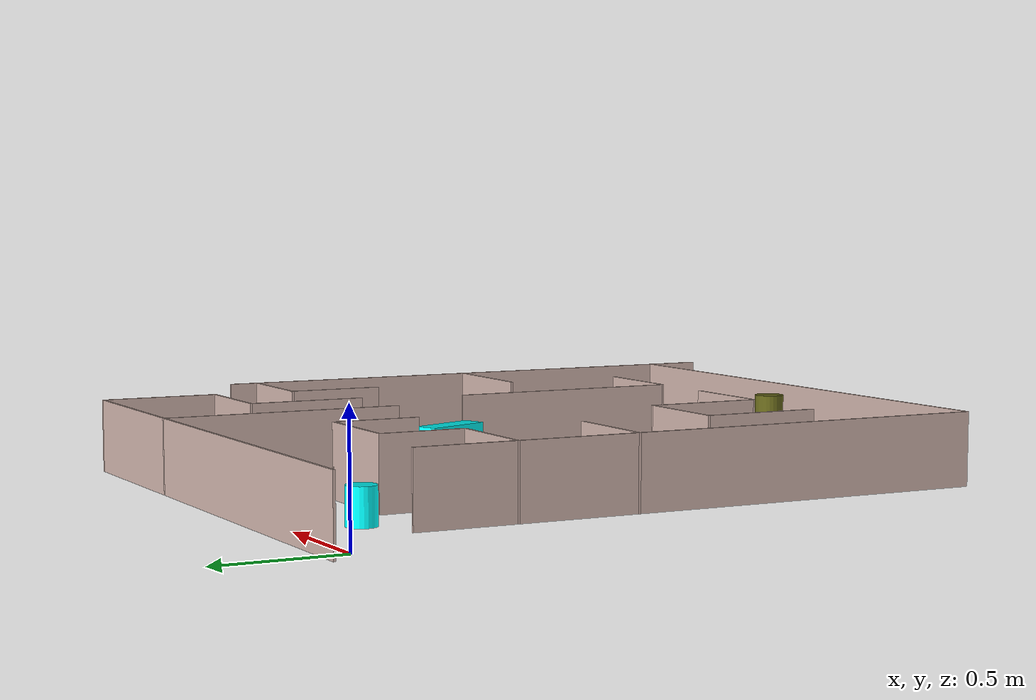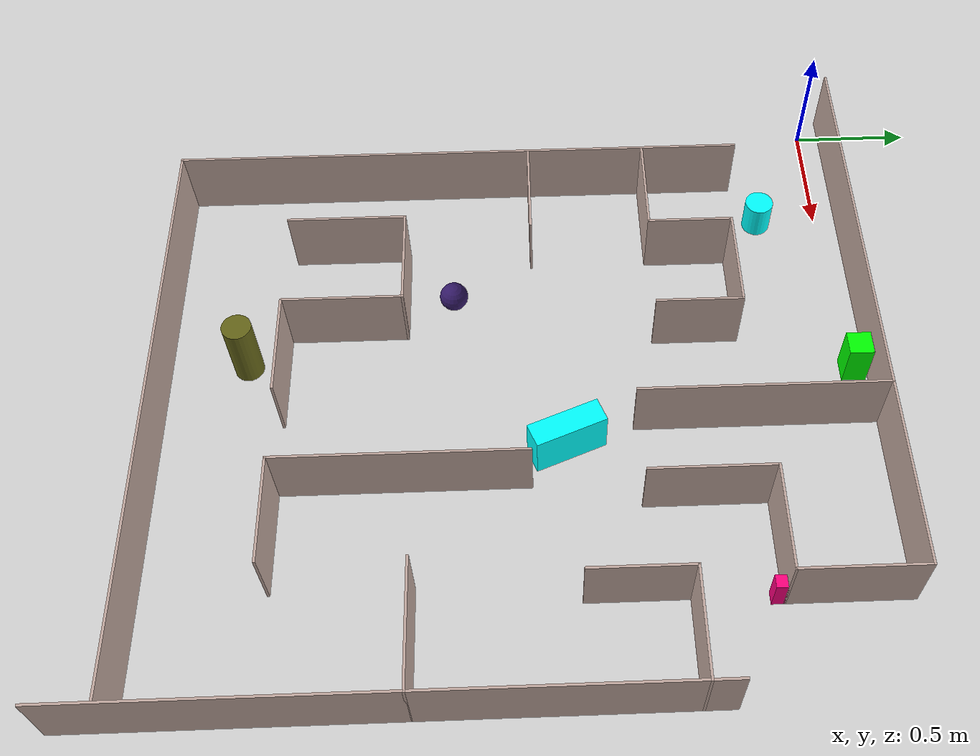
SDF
<?xml version='1.0'?>
<sdf version='1.7'>
  <model name='world3'>
    <pose>1.31 -1.465 0 0 -0 0</pose>
    <link name='Wall_0'>
      <collision name='Wall_0_Collision'>
        <geometry>
          <box>
            <size>2.44 0.01 0.3</size>
          </box>
        </geometry>
        <pose>0 0 0.15 0 -0 0</pose>
      </collision>
      <visual name='Wall_0_Visual'>
        <pose>0 0 0.15 0 -0 0</pose>
        <geometry>
          <box>
            <size>2.44 0.01 0.3</size>
          </box>
        </geometry>
        <material>
          <script>
            <uri>file://media/materials/scripts/gazebo.material</uri>
            <name>Gazebo/Grey</name>
          </script>
          <ambient>0.760784 0.662745 0.627451 1</ambient>
        </material>
        <meta>
          <layer>0</layer>
        </meta>
      </visual>
      <pose>-0.195 1.565 0 0 -0 0</pose>
    </link>
    <link name='Wall_12'>
      <collision name='Wall_12_Collision'>
        <geometry>
          <box>
            <size>1 0.01 0.3</size>
          </box>
        </geometry>
        <pose>0 0 0.15 0 -0 0</pose>
      </collision>
      <visual name='Wall_12_Visual'>
        <pose>0 0 0.15 0 -0 0</pose>
        <geometry>
          <box>
            <size>1 0.01 0.3</size>
          </box>
        </geometry>
        <material>
          <script>
            <uri>file://media/materials/scripts/gazebo.material</uri>
            <name>Gazebo/Grey</name>
          </script>
          <ambient>0.760784 0.662745 0.627451 1</ambient>
        </material>
        <meta>
          <layer>0</layer>
        </meta>
      </visual>
      <pose>0.25 1.07 0 0 -0 -1.5708</pose>
    </link>
    <link name='Wall_15'>
      <collision name='Wall_15_Collision'>
        <geometry>
          <box>
            <size>2.43 0.01 0.3</size>
          </box>
        </geometry>
        <pose>0 0 0.15 0 -0 0</pose>
      </collision>
      <visual name='Wall_15_Visual'>
        <pose>0 0 0.15 0 -0 0</pose>
        <geometry>
          <box>
            <size>2.43 0.01 0.3</size>
          </box>
        </geometry>
        <material>
          <script>
            <uri>file://media/materials/scripts/gazebo.material</uri>
            <name>Gazebo/Grey</name>
          </script>
          <ambient>0.760784 0.662745 0.627451 1</ambient>
        </material>
        <meta>
          <layer>0</layer>
        </meta>
      </visual>
      <pose>-1.01 -0.115 0 0 -0 -1.5708</pose>
    </link>
    <link name='Wall_17'>
      <collision name='Wall_17_Collision'>
        <geometry>
          <box>
            <size>2.43 0.01 0.3</size>
          </box>
        </geometry>
        <pose>0 0 0.15 0 -0 0</pose>
      </collision>
      <visual name='Wall_17_Visual'>
        <pose>0 0 0.15 0 -0 0</pose>
        <geometry>
          <box>
            <size>2.43 0.01 0.3</size>
          </box>
        </geometry>
        <material>
          <script>
            <uri>file://media/materials/scripts/gazebo.material</uri>
            <name>Gazebo/Grey</name>
          </script>
          <ambient>0.760784 0.662745 0.627451 1</ambient>
        </material>
        <meta>
          <layer>0</layer>
        </meta>
      </visual>
      <pose>0.2 -1.325 0 0 -0 0</pose>
    </link>
    <link name='Wall_19'>
      <collision name='Wall_19_Collision'>
        <geometry>
          <box>
            <size>2.43 0.01 0.3</size>
          </box>
        </geometry>
        <pose>0 0 0.15 0 -0 0</pose>
      </collision>
      <visual name='Wall_19_Visual'>
        <pose>0 0 0.15 0 -0 0</pose>
        <geometry>
          <box>
            <size>2.43 0.01 0.3</size>
          </box>
        </geometry>
        <material>
          <script>
            <uri>file://media/materials/scripts/gazebo.material</uri>
            <name>Gazebo/Grey</name>
          </script>
          <ambient>0.760784 0.662745 0.627451 1</ambient>
        </material>
        <meta>
          <layer>0</layer>
        </meta>
      </visual>
      <pose>1.41 -0.355 0 0 -0 1.5708</pose>
    </link>
    <link name='Wall_2'>
      <collision name='Wall_2_Collision'>
        <geometry>
          <box>
            <size>0.5 0.01 0.3</size>
          </box>
        </geometry>
        <pose>0 0 0.15 0 -0 0</pose>
      </collision>
      <visual name='Wall_2_Visual'>
        <pose>0 0 0.15 0 -0 0</pose>
        <geometry>
          <box>
            <size>0.5 0.01 0.3</size>
          </box>
        </geometry>
        <material>
          <script>
            <uri>file://media/materials/scripts/gazebo.material</uri>
            <name>Gazebo/Grey</name>
          </script>
          <ambient>0.760784 0.662745 0.627451 1</ambient>
        </material>
        <meta>
          <layer>0</layer>
        </meta>
      </visual>
      <pose>1.02 1.32 0 0 -0 -1.5708</pose>
    </link>
    <link name='Wall_22'>
      <collision name='Wall_22_Collision'>
        <geometry>
          <box>
            <size>0.43 0.01 0.3</size>
          </box>
        </geometry>
        <pose>0 0 0.15 0 -0 0</pose>
      </collision>
      <visual name='Wall_22_Visual'>
        <pose>0 0 0.15 0 -0 0</pose>
        <geometry>
          <box>
            <size>0.43 0.01 0.3</size>
          </box>
        </geometry>
        <material>
          <script>
            <uri>file://media/materials/scripts/gazebo.material</uri>
            <name>Gazebo/Grey</name>
          </script>
          <ambient>0.760784 0.662745 0.627451 1</ambient>
        </material>
        <meta>
          <layer>0</layer>
        </meta>
      </visual>
      <pose>-0.8 0.685 0 0 -0 0</pose>
    </link>
    <link name='Wall_24'>
      <collision name='Wall_24_Collision'>
        <geometry>
          <box>
            <size>0.36 0.01 0.3</size>
          </box>
        </geometry>
        <pose>0 0 0.15 0 -0 0</pose>
      </collision>
      <visual name='Wall_24_Visual'>
        <pose>0 0 0.15 0 -0 0</pose>
        <geometry>
          <box>
            <size>0.36 0.01 0.3</size>
          </box>
        </geometry>
        <material>
          <script>
            <uri>file://media/materials/scripts/gazebo.material</uri>
            <name>Gazebo/Grey</name>
          </script>
          <ambient>0.760784 0.662745 0.627451 1</ambient>
        </material>
        <meta>
          <layer>0</layer>
        </meta>
      </visual>
      <pose>-0.59 0.86 0 0 -0 1.5708</pose>
    </link>
    <link name='Wall_26'>
      <collision name='Wall_26_Collision'>
        <geometry>
          <box>
            <size>0.43 0.01 0.3</size>
          </box>
        </geometry>
        <pose>0 0 0.15 0 -0 0</pose>
      </collision>
      <visual name='Wall_26_Visual'>
        <pose>0 0 0.15 0 -0 0</pose>
        <geometry>
          <box>
            <size>0.43 0.01 0.3</size>
          </box>
        </geometry>
        <material>
          <script>
            <uri>file://media/materials/scripts/gazebo.material</uri>
            <name>Gazebo/Grey</name>
          </script>
          <ambient>0.760784 0.662745 0.627451 1</ambient>
        </material>
        <meta>
          <layer>0</layer>
        </meta>
      </visual>
      <pose>-0.38 1.035 0 0 -0 0</pose>
    </link>
    <link name='Wall_28'>
      <collision name='Wall_28_Collision'>
        <geometry>
          <box>
            <size>0.36 0.01 0.3</size>
          </box>
        </geometry>
        <pose>0 0 0.15 0 -0 0</pose>
      </collision>
      <visual name='Wall_28_Visual'>
        <pose>0 0 0.15 0 -0 0</pose>
        <geometry>
          <box>
            <size>0.36 0.01 0.3</size>
          </box>
        </geometry>
        <material>
          <script>
            <uri>file://media/materials/scripts/gazebo.material</uri>
            <name>Gazebo/Grey</name>
          </script>
          <ambient>0.760784 0.662745 0.627451 1</ambient>
        </material>
        <meta>
          <layer>0</layer>
        </meta>
      </visual>
      <pose>-0.17 0.86 0 0 -0 -1.5708</pose>
    </link>
    <link name='Wall_30'>
      <collision name='Wall_30_Collision'>
        <geometry>
          <box>
            <size>0.43 0.01 0.3</size>
          </box>
        </geometry>
        <pose>0 0 0.15 0 -0 0</pose>
      </collision>
      <visual name='Wall_30_Visual'>
        <pose>0 0 0.15 0 -0 0</pose>
        <geometry>
          <box>
            <size>0.43 0.01 0.3</size>
          </box>
        </geometry>
        <material>
          <script>
            <uri>file://media/materials/scripts/gazebo.material</uri>
            <name>Gazebo/Grey</name>
          </script>
          <ambient>0.760784 0.662745 0.627451 1</ambient>
        </material>
        <meta>
          <layer>0</layer>
        </meta>
      </visual>
      <pose>-0.8 0.185 0 0 -0 0</pose>
    </link>
    <link name='Wall_32'>
      <collision name='Wall_32_Collision'>
        <geometry>
          <box>
            <size>0.5 0.01 0.3</size>
          </box>
        </geometry>
        <pose>0 0 0.15 0 -0 0</pose>
      </collision>
      <visual name='Wall_32_Visual'>
        <pose>0 0 0.15 0 -0 0</pose>
        <geometry>
          <box>
            <size>0.5 0.01 0.3</size>
          </box>
        </geometry>
        <material>
          <script>
            <uri>file://media/materials/scripts/gazebo.material</uri>
            <name>Gazebo/Grey</name>
          </script>
          <ambient>0.760784 0.662745 0.627451 1</ambient>
        </material>
        <meta>
          <layer>0</layer>
        </meta>
      </visual>
      <pose>1.165 -0.295 0 0 -0 3.14159</pose>
    </link>
    <link name='Wall_34'>
      <collision name='Wall_34_Collision'>
        <geometry>
          <box>
            <size>0.43 0.01 0.3</size>
          </box>
        </geometry>
        <pose>0 0 0.15 0 -0 0</pose>
      </collision>
      <visual name='Wall_34_Visual'>
        <pose>0 0 0.15 0 -0 0</pose>
        <geometry>
          <box>
            <size>0.43 0.01 0.3</size>
          </box>
        </geometry>
        <material>
          <script>
            <uri>file://media/materials/scripts/gazebo.material</uri>
            <name>Gazebo/Grey</name>
          </script>
          <ambient>0.760784 0.662745 0.627451 1</ambient>
        </material>
        <meta>
          <layer>0</layer>
        </meta>
      </visual>
      <pose>1.2 0.735 0 0 -0 3.14159</pose>
    </link>
    <link name='Wall_36'>
      <collision name='Wall_36_Collision'>
        <geometry>
          <box>
            <size>0.41 0.01 0.3</size>
          </box>
        </geometry>
        <pose>0 0 0.15 0 -0 0</pose>
      </collision>
      <visual name='Wall_36_Visual'>
        <pose>0 0 0.15 0 -0 0</pose>
        <geometry>
          <box>
            <size>0.41 0.01 0.3</size>
          </box>
        </geometry>
        <material>
          <script>
            <uri>file://media/materials/scripts/gazebo.material</uri>
            <name>Gazebo/Grey</name>
          </script>
          <ambient>0.760784 0.662745 0.627451 1</ambient>
        </material>
        <meta>
          <layer>0</layer>
        </meta>
      </visual>
      <pose>0.99 0.535 0 0 -0 -1.5708</pose>
    </link>
    <link name='Wall_38'>
      <collision name='Wall_38_Collision'>
        <geometry>
          <box>
            <size>0.43 0.01 0.3</size>
          </box>
        </geometry>
        <pose>0 0 0.15 0 -0 0</pose>
      </collision>
      <visual name='Wall_38_Visual'>
        <pose>0 0 0.15 0 -0 0</pose>
        <geometry>
          <box>
            <size>0.43 0.01 0.3</size>
          </box>
        </geometry>
        <material>
          <script>
            <uri>file://media/materials/scripts/gazebo.material</uri>
            <name>Gazebo/Grey</name>
          </script>
          <ambient>0.760784 0.662745 0.627451 1</ambient>
        </material>
        <meta>
          <layer>0</layer>
        </meta>
      </visual>
      <pose>0.71 -0.835 0 0 -0 3.14159</pose>
    </link>
    <link name='Wall_39'>
      <collision name='Wall_39_Collision'>
        <geometry>
          <box>
            <size>1 0.01 0.3</size>
          </box>
        </geometry>
        <pose>0 0 0.15 0 -0 0</pose>
      </collision>
      <visual name='Wall_39_Visual'>
        <pose>0 0 0.15 0 -0 0</pose>
        <geometry>
          <box>
            <size>1 0.01 0.3</size>
          </box>
        </geometry>
        <material>
          <script>
            <uri>file://media/materials/scripts/gazebo.material</uri>
            <name>Gazebo/Grey</name>
          </script>
          <ambient>0.760784 0.662745 0.627451 1</ambient>
        </material>
        <meta>
          <layer>0</layer>
        </meta>
      </visual>
      <pose>0.5 -0.34 0 0 -0 1.5708</pose>
    </link>
    <link name='Wall_4'>
      <collision name='Wall_4_Collision'>
        <geometry>
          <box>
            <size>0.43 0.01 0.3</size>
          </box>
        </geometry>
        <pose>0 0 0.15 0 -0 0</pose>
      </collision>
      <visual name='Wall_4_Visual'>
        <pose>0 0 0.15 0 -0 0</pose>
        <geometry>
          <box>
            <size>0.43 0.01 0.3</size>
          </box>
        </geometry>
        <material>
          <script>
            <uri>file://media/materials/scripts/gazebo.material</uri>
            <name>Gazebo/Grey</name>
          </script>
          <ambient>0.760784 0.662745 0.627451 1</ambient>
        </material>
        <meta>
          <layer>0</layer>
        </meta>
      </visual>
      <pose>0.81 1.075 0 0 -0 3.14159</pose>
    </link>
    <link name='Wall_41'>
      <collision name='Wall_41_Collision'>
        <geometry>
          <box>
            <size>0.43 0.01 0.3</size>
          </box>
        </geometry>
        <pose>0 0 0.15 0 -0 0</pose>
      </collision>
      <visual name='Wall_41_Visual'>
        <pose>0 0 0.15 0 -0 0</pose>
        <geometry>
          <box>
            <size>0.43 0.01 0.3</size>
          </box>
        </geometry>
        <material>
          <script>
            <uri>file://media/materials/scripts/gazebo.material</uri>
            <name>Gazebo/Grey</name>
          </script>
          <ambient>0.760784 0.662745 0.627451 1</ambient>
        </material>
        <meta>
          <layer>0</layer>
        </meta>
      </visual>
      <pose>-0.02 -0.835 0 0 -0 3.14159</pose>
    </link>
    <link name='Wall_42'>
      <collision name='Wall_42_Collision'>
        <geometry>
          <box>
            <size>0.5 0.01 0.3</size>
          </box>
        </geometry>
        <pose>0 0 0.15 0 -0 0</pose>
      </collision>
      <visual name='Wall_42_Visual'>
        <pose>0 0 0.15 0 -0 0</pose>
        <geometry>
          <box>
            <size>0.5 0.01 0.3</size>
          </box>
        </geometry>
        <material>
          <script>
            <uri>file://media/materials/scripts/gazebo.material</uri>
            <name>Gazebo/Grey</name>
          </script>
          <ambient>0.760784 0.662745 0.627451 1</ambient>
        </material>
        <meta>
          <layer>0</layer>
        </meta>
      </visual>
      <pose>-0.23 -0.59 0 0 -0 1.5708</pose>
    </link>
    <link name='Wall_43'>
      <collision name='Wall_43_Collision'>
        <geometry>
          <box>
            <size>0.43 0.01 0.3</size>
          </box>
        </geometry>
        <pose>0 0 0.15 0 -0 0</pose>
      </collision>
      <visual name='Wall_43_Visual'>
        <pose>0 0 0.15 0 -0 0</pose>
        <geometry>
          <box>
            <size>0.43 0.01 0.3</size>
          </box>
        </geometry>
        <material>
          <script>
            <uri>file://media/materials/scripts/gazebo.material</uri>
            <name>Gazebo/Grey</name>
          </script>
          <ambient>0.760784 0.662745 0.627451 1</ambient>
        </material>
        <meta>
          <layer>0</layer>
        </meta>
      </visual>
      <pose>-0.44 -0.345 0 0 -0 3.14159</pose>
    </link>
    <link name='Wall_44'>
      <collision name='Wall_44_Collision'>
        <geometry>
          <box>
            <size>0.5 0.01 0.3</size>
          </box>
        </geometry>
        <pose>0 0 0.15 0 -0 0</pose>
      </collision>
      <visual name='Wall_44_Visual'>
        <pose>0 0 0.15 0 -0 0</pose>
        <geometry>
          <box>
            <size>0.5 0.01 0.3</size>
          </box>
        </geometry>
        <material>
          <script>
            <uri>file://media/materials/scripts/gazebo.material</uri>
            <name>Gazebo/Grey</name>
          </script>
          <ambient>0.760784 0.662745 0.627451 1</ambient>
        </material>
        <meta>
          <layer>0</layer>
        </meta>
      </visual>
      <pose>-0.65 -0.59 0 0 -0 -1.5708</pose>
    </link>
    <link name='Wall_8'>
      <collision name='Wall_8_Collision'>
        <geometry>
          <box>
            <size>0.5 0.01 0.3</size>
          </box>
        </geometry>
        <pose>0 0 0.15 0 -0 0</pose>
      </collision>
      <visual name='Wall_8_Visual'>
        <pose>0 0 0.15 0 -0 0</pose>
        <geometry>
          <box>
            <size>0.5 0.01 0.3</size>
          </box>
        </geometry>
        <material>
          <script>
            <uri>file://media/materials/scripts/gazebo.material</uri>
            <name>Gazebo/Grey</name>
          </script>
          <ambient>0.760784 0.662745 0.627451 1</ambient>
        </material>
        <meta>
          <layer>0</layer>
        </meta>
      </visual>
      <pose>0.6 0.83 0 0 -0 -1.5708</pose>
    </link>

    <link name='Obstacle_1'>
      <collision name='Obstacle_1_Collision'>
        <geometry>
          <box>
            <size>0.1 0.1 0.2</size>
          </box>
        </geometry>
        <pose>0 1.5 0.1 0 -0 0</pose>
      </collision>
      <visual name='Obstacle_1_Visual'>
        <pose>0 1.5 0.1 0 -0 0</pose>
        <geometry>
          <box>
            <size>0.1 0.1 0.2</size>
          </box>
        </geometry>
        <material>
          <ambient>0.0 1 0.0 1</ambient>
        </material>
      </visual>
    </link>
    <link name='Obstacle_2'>
      <collision name='Obstacle_2_Collision'>
        <geometry>
          <cylinder>
            <radius>0.06</radius>
            <length>0.15</length>
          </cylinder>
        </geometry>
        <pose>-0.8 1.2 0.075 0 -0 0</pose>
      </collision>
      <visual name='Obstacle_2_Visual'>
        <pose>-0.8 1.2 0.075 0 -0 0</pose>
        <geometry>
          <cylinder>
            <radius>0.06</radius>
            <length>0.15</length>
          </cylinder>
        </geometry>
        <material>
          <ambient>0 1 1 1</ambient>
        </material>
      </visual>
    </link>
    <link name='Obstacle_3'>
      <collision name='Obstacle_3_Collision'>
        <geometry>
          <box>
            <size>0.1 0.3 0.2</size>
          </box>
        </geometry>
        <pose>0.33 0.3 0.1 0 -0 0.38</pose>
      </collision>
      <visual name='Obstacle_3_Visual'>
        <pose>0.33 0.3 0.1 0 -0 0.38</pose>
        <geometry>
          <box>
            <size>0.1 0.3 0.2</size>
          </box>
        </geometry>
        <material>
          <ambient>0 1 1 1</ambient>
        </material>
      </visual>
    </link>
    <link name='Obstacle_4'>
      <collision name='Obstacle_4_Collision'>
        <geometry>
          <box>
            <size>0.05 0.05 0.15</size>
          </box>
        </geometry>
        <pose>1.0 1.05 0.075 0 -0 0</pose>
      </collision>
      <visual name='Obstacle_4_Visual'>
        <pose>1.0 1.05 0.075 0 -0 0</pose>
        <geometry>
          <box>
            <size>0.05 0.05 0.15</size>
          </box>
        </geometry>
        <material>
          <ambient>1 0 0.5 1</ambient>
        </material>
      </visual>
    </link>
    <link name='Obstacle_5'>
      <collision name='Obstacle_5_Collision'>
        <geometry>
          <cylinder>
            <radius>0.06</radius>
            <length>0.3</length>
          </cylinder>
        </geometry>
        <pose>-0.1 -1 0.15 0 -0 0</pose>
      </collision>
      <visual name='Obstacle_5_Visual'>
        <pose>-0.1 -1 0.15 0 -0 0</pose>
        <geometry>
          <cylinder>
            <radius>0.06</radius>
            <length>0.3</length>
          </cylinder>
        </geometry>
        <material>
          <ambient>0.4 0.4 0.1 1</ambient>
        </material>
      </visual>
    </link>
    <link name='Obstacle_6'>
      <collision name='Obstacle_6_Collision'>
        <geometry>
          <sphere>
            <radius>0.06</radius>
          </sphere>
        </geometry>
        <pose>-0.4 -0.15 0.06 0 -0 0</pose>
      </collision>
      <visual name='Obstacle_6_Visual'>
        <pose>-0.4 -0.15 0.06 0 -0 0</pose>
        <geometry>
          <sphere>
            <radius>0.06</radius>
          </sphere>
        </geometry>
        <material>
          <ambient>0.2 0.1 0.4 1</ambient>
        </material>
      </visual>
    </link>

    <static>1</static>
  </model>
</sdf>
